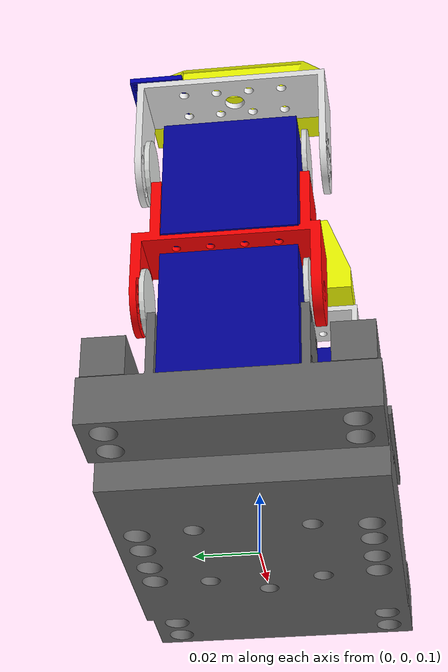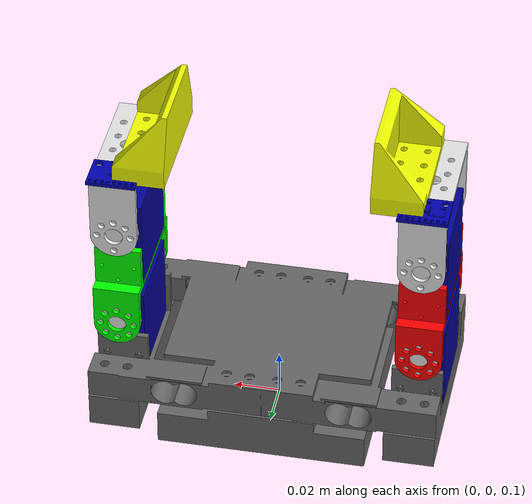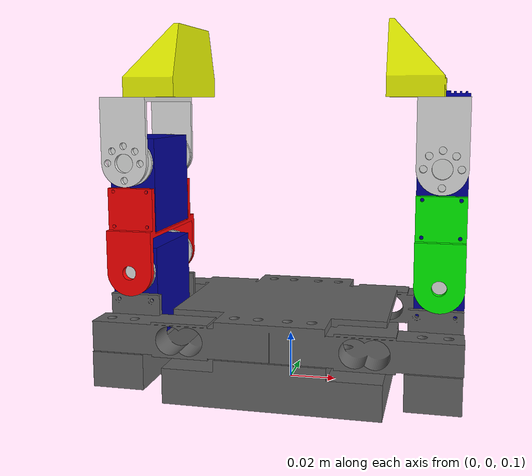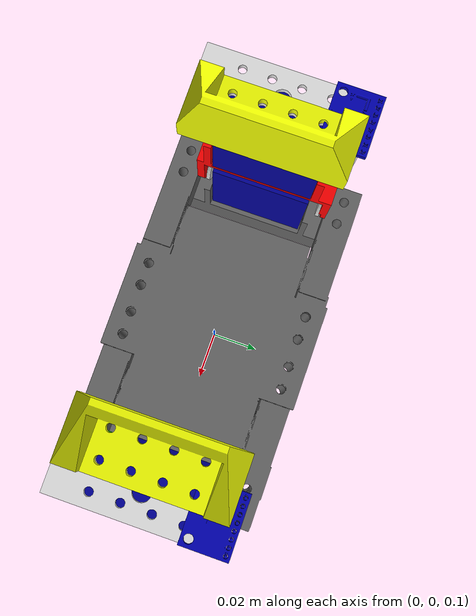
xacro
<?xml version="1.0" ?>
<robot xmlns:xacro="http://www.ros.org/wiki/xacro" name="diana_gripper_standalone">

  <!-- standalone urdf/xacro of the two-finger four-servo gripper

       2022.07.02 - created (re-factored)

       (C) 2022, fnh, hendrich@informatik.uni-hamburg.de
   -->

  <xacro:include filename="$(find diana_gripper)/urdf/diana_gripper.xacro" />
  <xacro:include filename="$(find diana_gripper)/urdf/fingertips.xacro" />

  <!-- the world frame -->

  <link name="world" />

  <!-- the gripper, attached to world -->

  <xacro:diana_gripper name="diana_gripper" />

  <joint name="world_diana_gripper_joint" type="fixed" >
   <parent link="world" />
   <child  link="diana_gripper" />
   <origin xyz="0 0 0.1" rpy="0 0 0" />
  </joint>

  <!-- a simple (pyramid shape) fingertip on the left finger -->

  <xacro:simple_fingertip name="diana_gripper/left_finger_simple_fingertip" />

  <joint name="diana_gripper/left_fingertip_simple_joint" type="fixed" >
    <parent link="diana_gripper/left_finger_tip_mount" />
    <child  link="diana_gripper/left_finger_simple_fingertip" />
    <origin xyz="0 0 0" rpy="0 0 1.571" />
  </joint>

  <!-- uncomment for the simple (pyramid) fingertip on the right finger:
  -->

  <xacro:simple_fingertip name="diana_gripper/right_finger_simple_fingertip" />

  <joint name="diana_gripper/right_fingertip_simple_joint" type="fixed" >
    <parent link="diana_gripper/right_finger_tip_mount" />
    <child  link="diana_gripper/right_finger_simple_fingertip" />
    <origin xyz="0 0 0" rpy="0 0 -1.571" />
  </joint>

</robot>

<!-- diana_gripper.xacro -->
<robot xmlns:xacro="http://www.ros.org/wiki/xacro" name="diana_gripper">

  <xacro:property name="KG_CM" value="1" />   <!-- actually: 0.0981 to convert from kg*cm to N*m -->

  <xacro:include filename="$(find diana_gripper)/urdf/scservo.xacro" />
  <xacro:include filename="$(find diana_gripper)/urdf/diana_gripper_gazebo.xacro" />
  <xacro:include filename="$(find diana_gripper)/urdf/imu_gy521.xacro" />
  <xacro:include filename="$(find diana_gripper)/urdf/fingertip.xacro" />

<xacro:macro name="diana_gripper" params="name" >

  <!-- prototype two-finger diana_gripper with four SC servos.
       Origin is at the bottom center of the base plate.
   -->
  <link name="${name}">
      <inertial>
        <!-- note that estimated mass does not include servos, these are separate -->
        <origin xyz="0 0 ${0.010}" />
        <mass value="0.2" />
        <inertia  ixx="0.001" ixy="0" ixz="0" iyy="0.001" iyz="0" izz="0.001" />
      </inertial>

      <!-- combined visuals: base plate, four load cells, two servo carriers, palm plate -->
      <visual>
        <origin xyz="0 0 0" />
        <material name="${name}_base_v1_material" >
          <color rgba="0.4 0.4 0.4 1.0" />
        </material>
        <geometry>
          <mesh filename="package://diana_gripper/meshes/diana_gripper_base_complete_v1.stl" scale="0.001 0.001 0.001" />
        </geometry>
      </visual>

      <!-- one single lump as a collision block, covers base plate, four load cells, two servo carriers -->
      <collision>
        <origin xyz="0 0.025 ${(0.02+0.0127)/2}" rpy="0 0 0" />
        <geometry>
          <box size="${0.075*2} ${0.105 + 0.05} ${0.02+0.0127}" />
        </geometry>
      </collision>
  </link>

  <gazebo reference="${name}">
      <material>Gazebo/Black</material>
      <turnGravityOff>false</turnGravityOff>
      <selfCollide>true</selfCollide>
      <!-- kp: stiffness kd: damping mu1, mu2: friction -->
      <mu1>100.0</mu1>
      <mu2>100.0</mu2>
      <kp>1000000.0</kp>
      <kd>1.0</kd>
  </gazebo>

  <!-- four servos -->

  <xacro:scservo name="${name}/left_finger_proximal_servo"
                 type="scs20"
                 rgba="0.0 0.0 0.6 1.0" gmaterial="Gazebo/Blue">
  </xacro:scservo>

  <xacro:scservo name="${name}/left_finger_distal_servo"
                 type="scs20"
                 rgba="0.0 0.0 0.6 1.0" gmaterial="Gazebo/Blue">
  </xacro:scservo>

  <xacro:scservo name="${name}/right_finger_proximal_servo"
                 type="scs20"
                 rgba="0.0 0.0 0.6 1.0" gmaterial="Gazebo/Blue">
  </xacro:scservo>

  <xacro:scservo name="${name}/right_finger_distal_servo"
                 type="scs20"
                 rgba="0.0 0.0 0.6 1.0" gmaterial="Gazebo/Blue">
  </xacro:scservo>

  <joint name="${name}/left_finger_proximal_servo_mount_joint" type="fixed" >
    <parent link="${name}" />
    <child  link="${name}/left_finger_proximal_servo" />
    <origin xyz="${-0.075+0.01} 0 ${0.015+0.005+0.03}" rpy="0 3.1415 0" />
  </joint>

  <joint name="${name}/LFJ2" type="revolute" >
    <parent link="${name}/left_finger_proximal_servo" />
    <child  link="${name}/left_finger_connector" />
    <origin xyz="0 0 0" rpy="0 0 0" />
    <axis xyz="0 1 0" />
    <limit lower="-1.571" upper="+1.571" effort="1" velocity="6.28" />
    <dynamics damping="0.7" friction="0.0" />
    <safety_controller soft_lower_limit="-1.57" soft_upper_limit="1.57" k_position="1000" k_velocity="100"/>
  </joint>

  <transmission name="${name}/LFJ2_joint_transmission">
    <type>transmission_interface/SimpleTransmission</type>
    <joint name="${name}/LFJ2" >
      <hardwareInterface>hardware_interface/EffortJointInterface</hardwareInterface>
    </joint>
    <actuator name="${name}/left_finger_proximal_joint_motor" >
      <hardwareInterface>hardware_interface/EffortJointInterface</hardwareInterface>
      <mechanicalReduction>100</mechanicalReduction>
    </actuator>
  </transmission>

  <link name="${name}/left_finger_connector" >
    <inertial>
      <origin xyz="0 0 0" rpy="0 0 0"/>
      <mass value="0.011" />
      <inertia ixx="0.001" ixy="0" ixz="0" iyy="0.001" iyz="0" izz="0.001" />
    </inertial>

    <visual>
      <origin xyz="0 0.001 0" rpy="0 -1.571 0" />
      <material name="${name}_left_finger_connector_material" >
        <color rgba="1.0 0.0 0.0 1.0" />
      </material>
      <geometry>
        <mesh filename="package://diana_gripper/meshes/diana_gripper_connector_v1.stl" scale="0.001 0.001 0.001" />
      </geometry>
    </visual>
    <collision>
      <origin xyz="0 0.001 0" rpy="0 -1.571 0" />
      <geometry>
        <mesh filename="package://diana_gripper/meshes/diana_gripper_connector_v1.stl" scale="0.001 0.001 0.001" />
      </geometry>
    </collision>
  </link>

  <joint name="${name}/left_finger_distal_servo_mount_joint" type="fixed" >
    <parent link="${name}/left_finger_connector" />
    <child  link="${name}/left_finger_distal_servo" />
    <origin xyz="0 0 ${-0.03-0.017}" rpy="0 0 0" />
  </joint>

  <link name="${name}/left_finger_distal_bracket" >
    <inertial>
      <origin xyz="0 0 0" rpy="0 0 0"/>
      <mass value="0.011" />
      <inertia ixx="0.001" ixy="0" ixz="0" iyy="0.001" iyz="0" izz="0.001" />
    </inertial>
    <visual>
      <origin xyz="0 0 -0.0275" rpy="0 0 1.571" />
      <material name="${name}_left_finger_distal_bracket_material" >
        <color rgba="0.9 0.9 0.9 1.0" />
      </material>
      <geometry>
        <mesh filename="package://diana_gripper/meshes/feetech_bracket_big.stl" scale="0.001 0.001 0.001" />
      </geometry>
    </visual>
    <collision>
      <origin xyz="0 0 -0.0275" rpy="0 0 1.571" />
      <geometry>
        <mesh filename="package://diana_gripper/meshes/feetech_bracket_big.stl" scale="0.001 0.001 0.001" />
      </geometry>
    </collision>
  </link>

  <joint name="${name}/LFJ1" type="revolute" >
    <parent link="${name}/left_finger_distal_servo" />
    <child  link="${name}/left_finger_distal_bracket" />
    <origin xyz="0 0 0" rpy="0 0 0" />
    <axis xyz="0 1 0" />
    <limit lower="-2.21" upper="+2.21" effort="1" velocity="6.28" />
    <dynamics damping="0.7" friction="0.0" />
    <safety_controller soft_lower_limit="-2.20" soft_upper_limit="2.20" k_position="1000" k_velocity="100"/>
  </joint>

  <transmission name="${name}/LFJ1_joint_transmission">
    <type>transmission_interface/SimpleTransmission</type>
    <joint name="${name}/LFJ1" >
      <hardwareInterface>hardware_interface/EffortJointInterface</hardwareInterface>
    </joint>
    <actuator name="${name}/left_finger_distal_joint_motor" >
      <hardwareInterface>hardware_interface/EffortJointInterface</hardwareInterface>
      <mechanicalReduction>100</mechanicalReduction>
    </actuator>
  </transmission>

  <link name="${name}/left_finger_tip_mount" />

  <!-- convert from weird SCS20 coordinates back to base frame (when finger straight) -->
  <joint name="${name}/left_finger_tip_mount_joint" type="fixed">
    <parent link="${name}/left_finger_distal_bracket" />
    <child  link="${name}/left_finger_tip_mount" />
    <origin xyz="0 0 ${-0.0275}" rpy="0 3.1415 0" />
  </joint>

  <!-- right finger with joints -->

  <joint name="${name}/right_finger_proximal_servo_mount_joint" type="fixed" >
    <parent link="${name}" />
    <child  link="${name}/right_finger_proximal_servo" />
    <origin xyz="${+0.075-0.01} 0 ${0.015+0.005+0.03}" rpy="0 3.1415 0" />
  </joint>

  <joint name="${name}/RFJ2" type="revolute" >
    <parent link="${name}/right_finger_proximal_servo" />
    <child  link="${name}/right_finger_connector" />
    <origin xyz="0 0 0" rpy="0 0 0" />
    <axis xyz="0 -1 0" />
    <limit lower="-1.571" upper="+1.571" effort="1" velocity="6.28" />
    <dynamics damping="0.7" friction="0.0" />
    <safety_controller soft_lower_limit="-1.57" soft_upper_limit="1.57" k_position="1000" k_velocity="100"/>
  </joint>

  <transmission name="${name}/RFJ2_joint_transmission">
    <type>transmission_interface/SimpleTransmission</type>
    <joint name="${name}/RFJ2" >
      <hardwareInterface>hardware_interface/EffortJointInterface</hardwareInterface>
    </joint>
    <actuator name="${name}/RFJ2_joint_motor" >
      <hardwareInterface>hardware_interface/EffortJointInterface</hardwareInterface>
      <mechanicalReduction>100</mechanicalReduction>
    </actuator>
  </transmission>

  <link name="${name}/right_finger_connector" >
    <inertial>
      <origin xyz="0 0 0" rpy="0 0 0"/>
      <mass value="0.011" />
      <inertia ixx="0.001" ixy="0" ixz="0" iyy="0.001" iyz="0" izz="0.001" />
    </inertial>
    <visual>
      <origin xyz="0 0.001 0" rpy="0 -1.571 0" />
      <material name="${name}_right_finger_connector_material" >
        <color rgba="0.0 1.0 0.0 1.0" />
      </material>
      <geometry>
        <mesh filename="package://diana_gripper/meshes/diana_gripper_connector_v1.stl" scale="0.001 0.001 0.001" />
      </geometry>
    </visual>
    <collision>
      <origin xyz="0 0.001 0" rpy="0 -1.571 0" />
      <geometry>
        <mesh filename="package://diana_gripper/meshes/diana_gripper_connector_v1.stl" scale="0.001 0.001 0.001" />
      </geometry>
    </collision>
  </link>

  <joint name="${name}/right_finger_distal_servo_mount_joint" type="fixed" >
    <parent link="${name}/right_finger_connector" />
    <child  link="${name}/right_finger_distal_servo" />
    <origin xyz="0 0 ${-0.03-0.017}" rpy="0 0 0" />
  </joint>

  <link name="${name}/right_finger_distal_bracket" >
    <inertial>
      <origin xyz="0 0 0" rpy="0 0 0"/>
      <mass value="0.011" />
      <inertia ixx="0.001" ixy="0" ixz="0" iyy="0.001" iyz="0" izz="0.001" />
    </inertial>
    <visual>
      <origin xyz="0 0 -0.0275" rpy="0 0 1.571" />
      <material name="${name}_right_finger_distal_bracket_material" >
        <color rgba="0.9 0.9 0.9 1.0" />
      </material>
      <geometry>
        <mesh filename="package://diana_gripper/meshes/feetech_bracket_big.stl" scale="0.001 0.001 0.001" />
      </geometry>
    </visual>

    <collision>
      <origin xyz="0 0 -0.0275" rpy="0 0 1.571" />
      <geometry>
        <mesh filename="package://diana_gripper/meshes/feetech_bracket_big.stl" scale="0.001 0.001 0.001" />
      </geometry>
    </collision>
  </link>

  <joint name="${name}/RFJ1" type="revolute" >
    <parent link="${name}/right_finger_distal_servo" />
    <child  link="${name}/right_finger_distal_bracket" />
    <origin xyz="0 0 0" rpy="0 0 0" />
    <axis xyz="0 -1 0" />
    <limit lower="-2.21" upper="+2.21" effort="1" velocity="6.28" />
    <dynamics damping="0.7" friction="0.0" />
    <safety_controller soft_lower_limit="-2.20" soft_upper_limit="2.20" k_position="1000" k_velocity="100"/>
  </joint>

  <transmission name="${name}/RFJ1_joint_transmission">
    <type>transmission_interface/SimpleTransmission</type>
    <joint name="${name}/RFJ1" >
      <hardwareInterface>hardware_interface/EffortJointInterface</hardwareInterface>
    </joint>
    <actuator name="${name}/RFJ1_joint_motor" >
      <hardwareInterface>hardware_interface/EffortJointInterface</hardwareInterface>
      <mechanicalReduction>100</mechanicalReduction>
    </actuator>
  </transmission>

  <link name="${name}/right_finger_tip_mount" />

  <!-- convert from weird SCS20 coordinates back to base frame (when finger straight) -->
  <joint name="${name}/right_finger_tip_mount_joint" type="fixed">
    <parent link="${name}/right_finger_distal_bracket" />
    <child  link="${name}/right_finger_tip_mount" />
    <origin xyz="0 0 ${-0.0275}" rpy="0 3.1415 0" />   <!-- or ${-0.0275-0.02} -->
  </joint>

<!--
  diana_gripper/left_fingertip
  diana_gripper/right_fingertip
-->

  <xacro:tcp name="${name}"/>

  <xacro:imu_gy521 parent="${name}/left_finger_tip_mount" name="${name}/left_finger_imu" >
    <origin xyz="0 0.023 0" rpy="0 0 3.141" />
  </xacro:imu_gy521>
  <xacro:imu_gy521 parent="${name}/right_finger_tip_mount" name="${name}/right_finger_imu" >
    <origin xyz="0 0.023 0" rpy="0 0 3.141" />
  </xacro:imu_gy521>

</xacro:macro> <!-- end xacro:diana_gripper -->

<xacro:macro name="dummy_fingertips" >
  <xacro:fingertip name="diana_gripper/left_finger_fingertip" radius="0.005"
                      rgba="1.0 0.0 0.0 1.0" gmaterial="Gazebo/Red" />

  <joint name="diana_gripper/left_finger_fingertip_joint" type="fixed">
    <parent link="diana_gripper/left_finger_tip_mount" />
    <child  link="diana_gripper/left_finger_fingertip" />
    <origin xyz="+0.02 0 0.07" rpy="0 0 0" />
  </joint>

  <xacro:fingertip name="diana_gripper/right_finger_fingertip" radius="0.005"
                      rgba="0.0 1.0 0.0 1.0" gmaterial="Gazebo/Green" />

  <joint name="diana_gripper/right_finger_fingertip_joint" type="fixed">
    <parent link="diana_gripper/right_finger_tip_mount" />
    <child  link="diana_gripper/right_finger_fingertip" />
    <origin xyz="-0.02 0 0.07" rpy="0 0 0" />
  </joint>

</xacro:macro>

<xacro:macro name="tcp" params="name">

  <link name="${name}/tcp" >
  </link>

  <joint name="${name}/tcp_joint" type="fixed" >
    <parent link="${name}" />
    <child  link="${name}/tcp" />
    <origin xyz="0 0 0.15" rpy="0 0 0" />
  </joint>
</xacro:macro>

</robot>

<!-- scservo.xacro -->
<robot xmlns:xacro="http://www.ros.org/wiki/xacro" name="scservo">

  <xacro:macro name="scservo_axle_plate" params="parent name *origin">

    <link name="${parent}/${name}">
        <inertial>
          <origin xyz="0.0 0.0 0.0" />
          <mass value="0.005" />
          <inertia  ixx="0.000001" ixy="0" ixz="0" iyy="0.000001" iyz="0" izz="0.00001" />
        </inertial>
        <visual>
          <origin xyz="0.0 0.0 0.0" rpy="1.571 0 0" />
          <material name="${name}_aluminum" >
            <color rgba="0.88 0.89 0.88 1.0" />
          </material>
          <geometry>
            <cylinder radius="0.01" length="0.0015" />
          </geometry>
        </visual>
        <collision>
          <origin xyz="0.0 0.0 0.0" rpy="1.571 0 0" />
          <geometry>
            <cylinder radius="0.01" length="0.002" />
          </geometry>
        </collision>
    </link>

    <gazebo reference="${parent}/${name}">
        <material>${gmaterial}</material>
        <turnGravityOff>false</turnGravityOff>
        <selfCollide>true</selfCollide>
        <mu1>0.2</mu1>
        <mu2>0.2</mu2>
        <kp>1000000.0</kp>
        <kd>1.0</kd>
    </gazebo>

    <joint name="${parent}/${name}_joint" type="fixed">
      <parent link="${parent}" />
      <child  link="${parent}/${name}" />
      <xacro:insert_block name="origin" />
    </joint>

  </xacro:macro>

  <xacro:macro name="scservo" params="name type rgba gmaterial" >

    <!-- standard servo size: 20x20x40 millimeters, about 100 grams, origin at axis, at z=10millimeters -->
    <link name="${name}">
        <inertial>
          <origin xyz="0.0 0.0 0.01" />
          <mass value="0.1" />
          <inertia  ixx="0.0001" ixy="0" ixz="0" iyy="0.0001" iyz="0" izz="0.0001" />
        </inertial>
        <visual>
          <origin xyz="0.0 0.0 0.01" rpy="0 0 0" />
          <material name="${name}_material" >
            <color rgba="${rgba}" />
          </material>
          <geometry>
            <box size="0.02 0.04 0.04" />
          </geometry>
        </visual>
        <collision>
          <origin xyz="0.0 0.0 0.01" rpy="0 0 0" />
          <geometry>
            <box size="0.02 0.04 0.04" />
          </geometry>
        </collision>
    </link>

    <gazebo reference="${name}">
        <material>${gmaterial}</material>
        <gravity>true</gravity>
        <selfCollide>true</selfCollide>
        <mu1>0.2</mu1>
        <mu2>0.2</mu2>
        <maxVel>0.5</maxVel>
        <minDepth>0.001</minDepth>
        <maxContacts>3</maxContacts>
        <dampingFactor>0.1</dampingFactor>
        <laserRetro>0.6</laserRetro>
    </gazebo>

    <xacro:scservo_axle_plate parent="${name}" name="front_axle_plate" >
      <origin xyz="0 0.025 0" rpy="0 0 0" />
    </xacro:scservo_axle_plate>

    <xacro:scservo_axle_plate parent="${name}" name="rear_axle_plate" >
      <origin xyz="0 -0.022 0" rpy="0 0 0" />
    </xacro:scservo_axle_plate>

  </xacro:macro>

</robot>

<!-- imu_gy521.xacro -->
<robot xmlns:xacro="http://www.ros.org/wiki/xacro" name="imu_gy521">

  <!-- basic CAD model of the GY-521 breakout board with MPU-6050 IMU chip -->

  <xacro:macro name="imu_gy521" params="name parent *origin">

    <link name="${name}">
        <inertial>
          <origin xyz="0.0 0.0 0.0" />
          <mass value="0.005" />
          <inertia  ixx="0.000001" ixy="0" ixz="0" iyy="0.000001" iyz="0" izz="0.00001" />
        </inertial>
        <visual>
          <origin xyz="0.0 0.0 0.0" rpy="0 0 0" />
          <material name="${name}_material" >
            <color rgba="0.0 0.0 0.7 1.0" />
          </material>
          <geometry>
           <mesh filename="package://diana_gripper/meshes/imu_gy521.stl" scale="0.001 0.001 0.001" />
         </geometry>
        </visual>
        <collision>
          <geometry>
           <mesh filename="package://diana_gripper/meshes/imu_gy521.stl" scale="0.001 0.001 0.001" />
         </geometry>
        </collision>
    </link>

    <gazebo reference="${name}">
        <material>Gazebo/Blue</material>
        <turnGravityOff>false</turnGravityOff>
        <selfCollide>true</selfCollide>
        <mu1>0.2</mu1>
        <mu2>0.2</mu2>
        <kp>1000000.0</kp>
        <kd>1.0</kd>
    </gazebo>

    <joint name="${name}_joint" type="fixed">
      <parent link="${parent}" />
      <child  link="${name}" />
      <xacro:insert_block name="origin" />
    </joint>

  </xacro:macro>

</robot>

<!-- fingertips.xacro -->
<robot xmlns:xacro="http://www.ros.org/wiki/xacro" name="digit_fingertip">

<xacro:macro name="digit_fingertip" params="name">
<!-- digit sensors on the distal finger brackets -->

  <link name="${name}" >
    <inertial>
      <origin xyz="0 0 0" rpy="0 0 0"/>
      <mass value="0.051" />
      <inertia ixx="0.001" ixy="0" ixz="0" iyy="0.001" iyz="0" izz="0.001" />
    </inertial>

    <visual>
      <origin xyz="0 0 0" rpy="0 0 1.571" />
      <material name="${name}_material" >
        <color rgba="0.4 0.4 0.4 1.0" />
      </material>
      <geometry>
        <mesh filename="package://diana_gripper/meshes/digit_sensor.stl" scale="0.001 0.001 0.001" />
      </geometry>
    </visual>
    <collision>
      <origin xyz="0 0 0" rpy="0 0 1.571" />
      <geometry>
        <mesh filename="package://diana_gripper/meshes/digit_sensor.stl" scale="0.001 0.001 0.001" />
      </geometry>
    </collision>
  </link>
</xacro:macro>

<xacro:macro name="digit_multitip_fingertip" params="name">
<!-- digit sensors on the distal finger brackets -->

  <link name="${name}" >
    <inertial>
      <origin xyz="0 0 0" rpy="0 0 0"/>
      <mass value="0.051" />
      <inertia ixx="0.001" ixy="0" ixz="0" iyy="0.001" iyz="0" izz="0.001" />
    </inertial>

    <visual>
      <origin xyz="0 -0.01 0" rpy="0 0 3.141" />
      <material name="${name}_material" >
        <color rgba="0.4 0.4 0.4 1.0" />
      </material>
      <geometry>
        <mesh filename="package://diana_gripper/meshes/multitip.stl" scale="0.001 0.001 0.001" />
      </geometry>
    </visual>
    <collision>
      <origin xyz="0 -0.01 0" rpy="0 0 3.141" />
      <geometry>
        <mesh filename="package://diana_gripper/meshes/multitip_hull.stl" scale="0.001 0.001 0.001" />
      </geometry>
    </collision>
  </link>
</xacro:macro>

<xacro:macro name="simple_fingertip" params="name">
  <!-- simple finger brackets -->

  <link name="${name}" >
    <inertial>
      <origin xyz="0 0 0" rpy="0 0 0"/>
      <mass value="0.011" />
      <inertia ixx="0.001" ixy="0" ixz="0" iyy="0.001" iyz="0" izz="0.001" />
    </inertial>

    <visual>
      <origin xyz="0 0 0" rpy="0 0 0" />
      <material name="${name}_material" >
        <color rgba="0.95 1 0 1.0" />
      </material>
      <geometry>
        <mesh filename="package://diana_gripper/meshes/fingertip_simple.stl" scale="0.001 0.001 0.001" />
      </geometry>
    </visual>
    <collision>
      <origin xyz="0 0 0" rpy="0 0 0" />
      <geometry>
        <mesh filename="package://diana_gripper/meshes/fingertip_simple_hull.stl" scale="0.001 0.001 0.001" />
      </geometry>
    </collision>
  </link>
</xacro:macro>

<xacro:macro name="finray_fingertip" params="name">

  <link name="${name}" >
    <inertial>
      <origin xyz="0 0 0" rpy="0 0 0"/>
      <mass value="0.021" />
      <inertia ixx="0.001" ixy="0" ixz="0" iyy="0.001" iyz="0" izz="0.001" />
    </inertial>

    <visual>
      <origin xyz="0 0 0" rpy="0 0 0" />
      <material name="${name}_material" >
        <color rgba="0.4 0.4 0.4 1.0" />
      </material>
      <geometry>
        <mesh filename="package://diana_gripper/meshes/finray_finger.stl" scale="0.001 0.001 0.001" />
      </geometry>
    </visual>
  </link>
</xacro:macro>

<xacro:macro name="finray_ridges_fingertip" params="name">

  <link name="${name}" >
    <inertial>
      <origin xyz="0 0 0" rpy="0 0 0"/>
      <mass value="0.021" />
      <inertia ixx="0.001" ixy="0" ixz="0" iyy="0.001" iyz="0" izz="0.001" />
    </inertial>

    <visual>
      <origin xyz="0 0 0" rpy="0 0 0" />
      <material name="${name}_material" >
        <color rgba="0.4 0.4 0.4 1.0" />
      </material>
      <geometry>
        <mesh filename="package://diana_gripper/meshes/finray_finger_slanted_ridges.stl" scale="0.001 0.001 0.001" />
      </geometry>
    </visual>
  </link>
</xacro:macro>

</robot>
